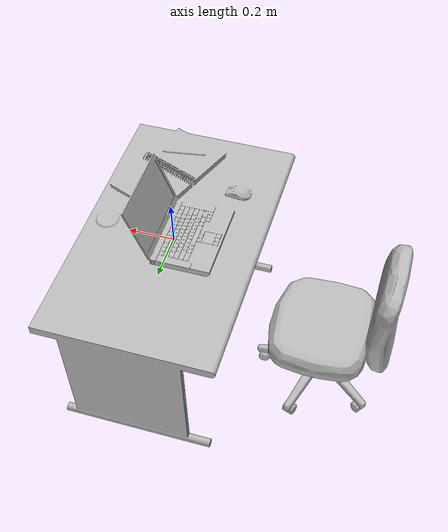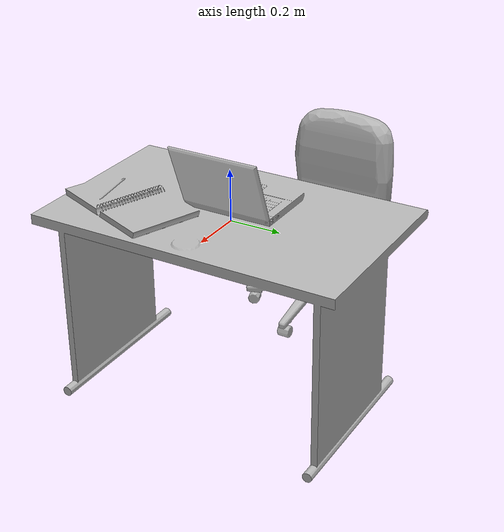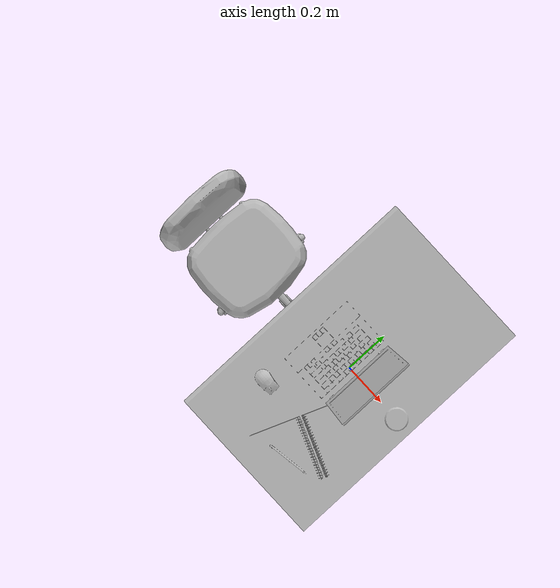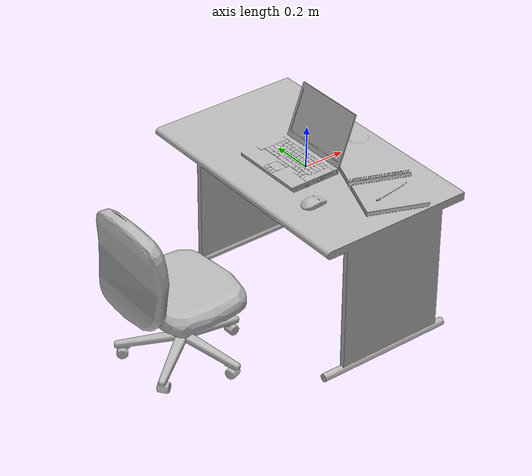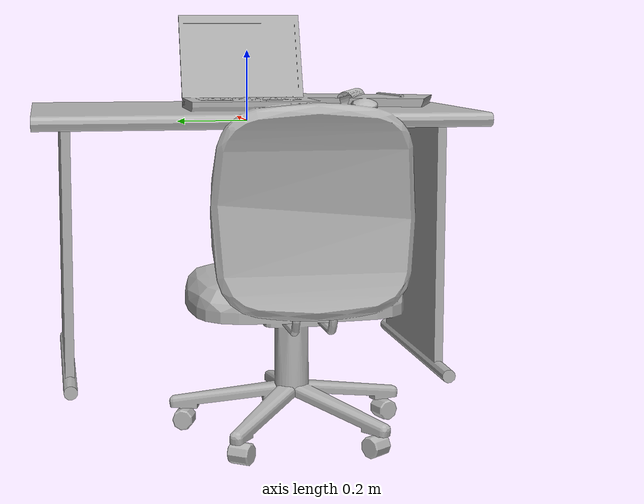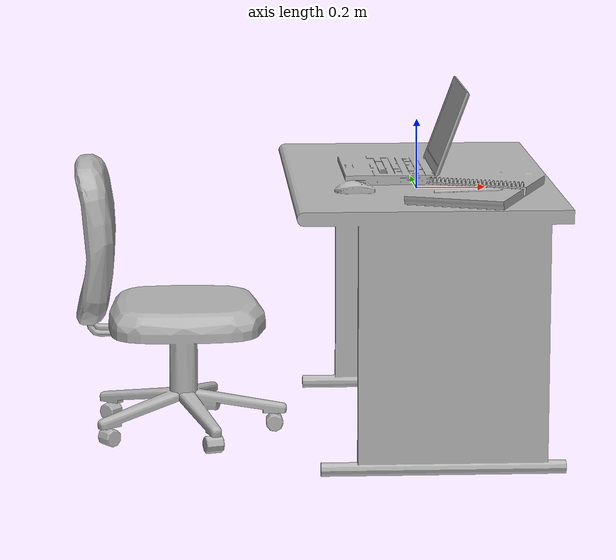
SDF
<?xml version="1.0" ?>
<sdf version="1.6">
  <model name="Student Desk - Laptop">
    <static>true</static>
    <link name="link">
      <visual name="visual">
        <geometry>
          <mesh>
            <uri>model://Student Desk - Laptop/meshes/Student_Desk_Laptop.obj</uri>
          </mesh>
        </geometry>
      </visual>
      <collision name="collision">
        <geometry>
          <mesh>
            <uri>model://Student Desk - Laptop/meshes/Student_Desk_Laptop.obj</uri>
          </mesh>
        </geometry>
      </collision>
    </link>
  </model>
</sdf>
